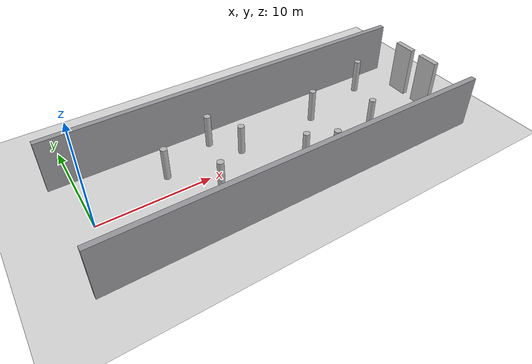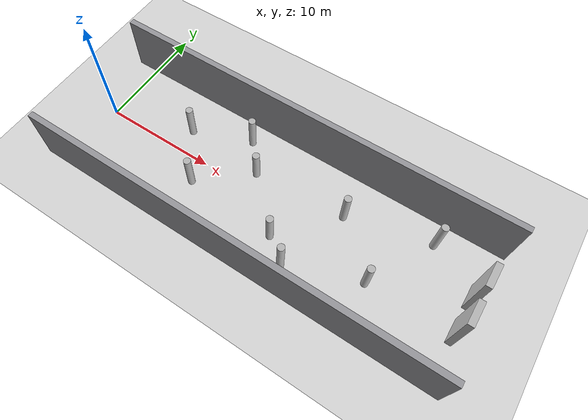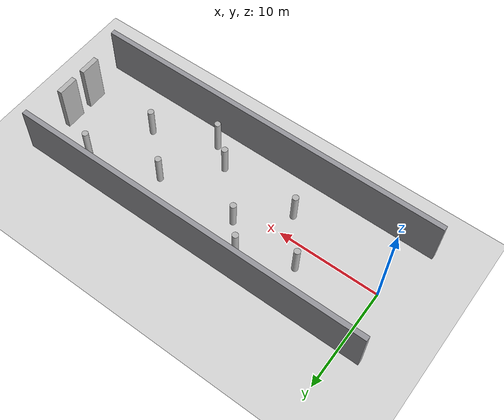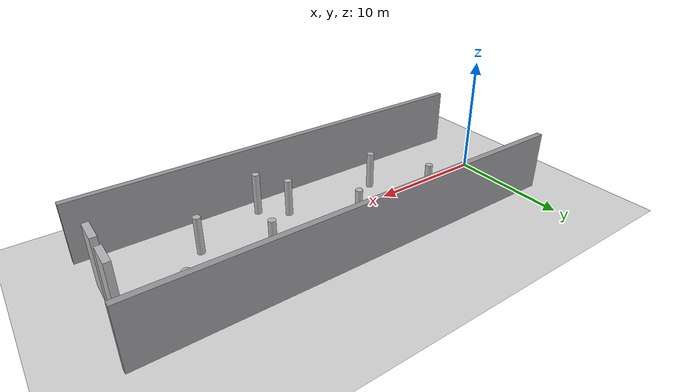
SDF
<?xml version="1.0" encoding="UTF-8"?>
<sdf version="1.9">
  <world name="obstacle_avoidance">
    <physics type="ode">
      <max_step_size>0.004</max_step_size>
      <real_time_factor>1.0</real_time_factor>
      <real_time_update_rate>250</real_time_update_rate>
    </physics>
    <plugin name="gz::sim::systems::Physics" filename="gz-sim-physics-system"/>
    <plugin name="gz::sim::systems::UserCommands" filename="gz-sim-user-commands-system"/>
    <plugin name="gz::sim::systems::SceneBroadcaster" filename="gz-sim-scene-broadcaster-system"/>
    <plugin name="gz::sim::systems::Contact" filename="gz-sim-contact-system"/>
    <plugin name="gz::sim::systems::Imu" filename="gz-sim-imu-system"/>
    <plugin name="gz::sim::systems::AirPressure" filename="gz-sim-air-pressure-system"/>
    <plugin name="gz::sim::systems::AirSpeed" filename="gz-sim-air-speed-system"/>
    <plugin name="gz::sim::systems::ApplyLinkWrench" filename="gz-sim-apply-link-wrench-system"/>
    <plugin name="gz::sim::systems::NavSat" filename="gz-sim-navsat-system"/>
    <plugin name="gz::sim::systems::Magnetometer" filename="gz-sim-magnetometer-system"/>
    <plugin name="gz::sim::systems::Sensors" filename="gz-sim-sensors-system">
      <render_engine>ogre2</render_engine>
    </plugin>
    <plugin name="custom::OpticalFlowSystem" filename="libOpticalFlowSystem.so"/>
    <plugin name="custom::GstCameraSystem" filename="libGstCameraSystem.so"/>

    <gravity>0 0 -9.8</gravity>
    <magnetic_field>6e-06 2.3e-05 -4.2e-05</magnetic_field>
    <atmosphere type="adiabatic"/>

    <scene>
      <grid>true</grid>
      <ambient>0.45 0.45 0.45 1</ambient>
      <background>0.74 0.77 0.82 1</background>
      <shadows>true</shadows>
    </scene>

    <model name="ground_plane">
      <static>true</static>
      <link name="link">
        <collision name="collision">
          <geometry>
            <plane>
              <normal>0 0 1</normal>
              <size>1 1</size>
            </plane>
          </geometry>
          <surface>
            <friction><ode/></friction>
          </surface>
        </collision>
        <visual name="visual">
          <geometry>
            <plane>
              <normal>0 0 1</normal>
              <size>120 120</size>
            </plane>
          </geometry>
          <material>
            <ambient>0.85 0.85 0.85 1</ambient>
            <diffuse>0.85 0.85 0.85 1</diffuse>
            <specular>0.4 0.4 0.4 1</specular>
          </material>
        </visual>
      </link>
    </model>

    <light name="sunUTC" type="directional">
      <pose>0 0 500 0 0 0</pose>
      <cast_shadows>true</cast_shadows>
      <intensity>1.0</intensity>
      <direction>0.001 0.625 -0.78</direction>
      <diffuse>0.9 0.9 0.9 1</diffuse>
      <specular>0.25 0.25 0.25 1</specular>
      <attenuation>
        <range>2000</range>
        <linear>0</linear>
        <constant>1</constant>
        <quadratic>0</quadratic>
      </attenuation>
    </light>

    <spherical_coordinates>
      <surface_model>EARTH_WGS84</surface_model>
      <world_frame_orientation>ENU</world_frame_orientation>
      <latitude_deg>47.397971057728974</latitude_deg>
      <longitude_deg>8.546163739800146</longitude_deg>
      <elevation>0</elevation>
    </spherical_coordinates>

    <model name="lane_left_wall">
      <static>false</static>
      <pose>16 6 2.5 0 0 0</pose>
      <link name="link">
        <collision name="collision">
          <geometry><box><size>36 0.5 5</size></box></geometry>
        </collision>
        <visual name="visual">
          <geometry><box><size>36 0.5 5</size></box></geometry>
          <material><ambient>0.5 0.5 0.52 1</ambient><diffuse>0.6 0.6 0.62 1</diffuse></material>
        </visual>
      </link>
    </model>

    <model name="lane_right_wall">
      <static>false</static>
      <pose>16 -6 2.5 0 0 0</pose>
      <link name="link">
        <collision name="collision">
          <geometry><box><size>36 0.5 5</size></box></geometry>
        </collision>
        <visual name="visual">
          <geometry><box><size>36 0.5 5</size></box></geometry>
          <material><ambient>0.5 0.5 0.52 1</ambient><diffuse>0.6 0.6 0.62 1</diffuse></material>
        </visual>
      </link>
    </model>

    <model name="block_01">
      <static>false</static>
      <pose>7 2.1 1.5 0 0 0</pose>
      <link name="link">
        <collision name="collision"><geometry><cylinder><radius>0.3</radius><length>3.2</length></cylinder></geometry></collision>
        <visual name="visual"><geometry><cylinder><radius>0.3</radius><length>3.2</length></cylinder></geometry></visual>
      </link>
    </model>
    <model name="block_02">
      <static>false</static>
      <pose>10 -2.0 1.75 0 0 0</pose>
      <link name="link">
        <collision name="collision"><geometry><cylinder><radius>0.3</radius><length>3.2</length></cylinder></geometry></collision>
        <visual name="visual"><geometry><cylinder><radius>0.3</radius><length>3.2</length></cylinder></geometry></visual>
      </link>
    </model>
    <model name="block_03">
      <static>false</static>
      <pose>14 1.6 1.25 0 0 0</pose>
     <link name="link">
        <collision name="collision"><geometry><cylinder><radius>0.3</radius><length>3.2</length></cylinder></geometry></collision>
        <visual name="visual"><geometry><cylinder><radius>0.3</radius><length>3.2</length></cylinder></geometry></visual>
      </link>
    </model>
    <model name="block_04">
      <static>false</static>
      <pose>18 -2.5 1.5 0 0 0</pose>
      <link name="link">
        <collision name="collision"><geometry><cylinder><radius>0.3</radius><length>3.2</length></cylinder></geometry></collision>
        <visual name="visual"><geometry><cylinder><radius>0.3</radius><length>3.2</length></cylinder></geometry></visual>
      </link>
    </model>
    <model name="block_05">
      <static>false</static>
      <pose>22 2.0 1.75 0 0 0</pose>
      <link name="link">
        <collision name="collision"><geometry><cylinder><radius>0.3</radius><length>3.2</length></cylinder></geometry></collision>
        <visual name="visual"><geometry><cylinder><radius>0.3</radius><length>3.2</length></cylinder></geometry></visual>
      </link>
    </model>
    <model name="block_06">
      <static>false</static>
      <pose>26 -1.8 1.5 0 0 0</pose>
      <link name="link">
        <collision name="collision"><geometry><cylinder><radius>0.3</radius><length>3.2</length></cylinder></geometry></collision>
        <visual name="visual"><geometry><cylinder><radius>0.3</radius><length>3.2</length></cylinder></geometry></visual>
      </link>
    </model>

    <model name="cyl_01">
      <static>false</static>
      <pose>12 4.0 1.6 0 0 0</pose>
      <link name="link">
        <collision name="collision"><geometry><cylinder><radius>0.3</radius><length>3.2</length></cylinder></geometry></collision>
        <visual name="visual"><geometry><cylinder><radius>0.3</radius><length>3.2</length></cylinder></geometry></visual>
      </link>
    </model>
    <model name="cyl_02">
      <static>false</static>
      <pose>20 -4.1 1.8 0 0 0</pose>
      <link name="link">
        <collision name="collision"><geometry><cylinder><radius>0.3</radius><length>3.6</length></cylinder></geometry></collision>
        <visual name="visual"><geometry><cylinder><radius>0.3</radius><length>3.6</length></cylinder></geometry></visual>
      </link>
    </model>
    <model name="cyl_03">
      <static>false</static>
      <pose>29 3.8 1.7 0 0 0</pose>
      <link name="link">
        <collision name="collision"><geometry><cylinder><radius>0.3</radius><length>3.4</length></cylinder></geometry></collision>
        <visual name="visual"><geometry><cylinder><radius>0.3</radius><length>3.4</length></cylinder></geometry></visual>
      </link>
    </model>

    <model name="goal_gate_left">
      <static>false</static>
      <pose>33 1.5 2.5 0 0 0</pose>
      <link name="link">
        <collision name="collision"><geometry><box><size>0.5 2.0 5.0</size></box></geometry></collision>
        <visual name="visual"><geometry><box><size>0.5 2.0 5.0</size></box></geometry></visual>
      </link>
    </model>
    <model name="goal_gate_right">
      <static>false</static>
      <pose>33 -1.5 2.5 0 0 0</pose>
      <link name="link">
        <collision name="collision"><geometry><box><size>0.5 2.0 5.0</size></box></geometry></collision>
        <visual name="visual"><geometry><box><size>0.5 2.0 5.0</size></box></geometry></visual>
      </link>
    </model>
  </world>
</sdf>
